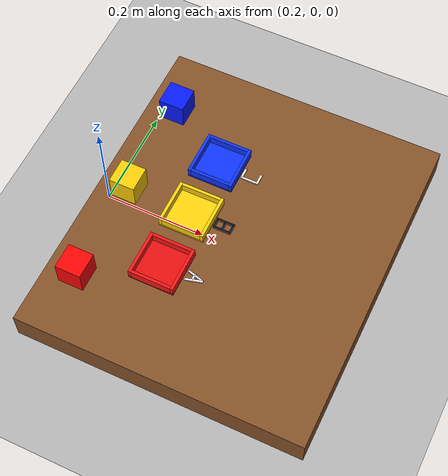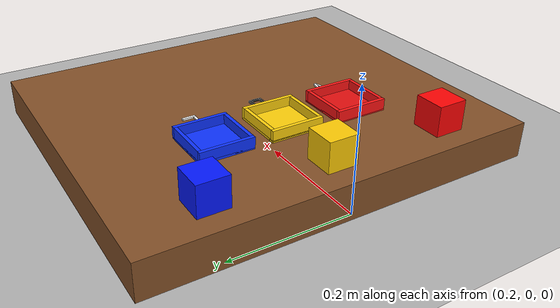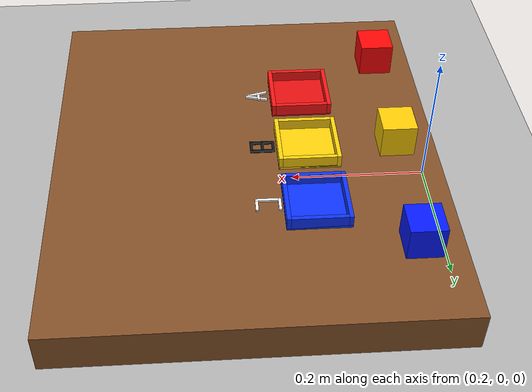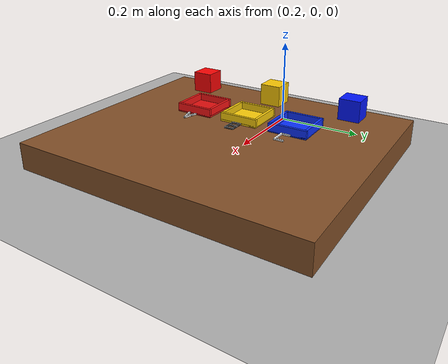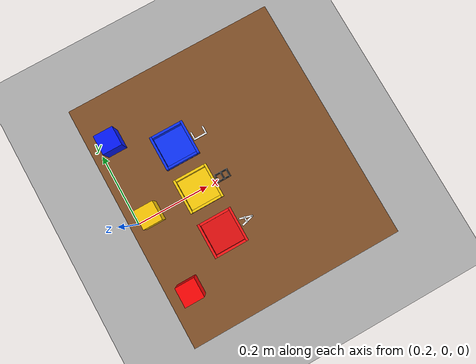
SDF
<?xml version="1.0"?>
<sdf version="1.9">
  <world name="hri_assignment">
    <physics name="1ms" type="ignored"><max_step_size>0.001</max_step_size><real_time_factor>1.0</real_time_factor></physics>
    <plugin filename="gz-sim-physics-system" name="gz::sim::systems::Physics"/>
    <plugin filename="gz-sim-user-commands-system" name="gz::sim::systems::UserCommands"/>
    <plugin filename="gz-sim-scene-broadcaster-system" name="gz::sim::systems::SceneBroadcaster"/>
    <light type="directional" name="sun"><pose>0 0 10 0 0 0</pose><diffuse>0.9 0.9 0.9 1</diffuse><direction>-0.5 0.2 -1</direction></light>
    <model name="ground_plane"><static>true</static><link name="link"><collision name="collision"><geometry><plane><normal>0 0 1</normal><size>10 10</size></plane></geometry></collision><visual name="visual"><geometry><plane><normal>0 0 1</normal><size>10 10</size></plane></geometry><material><ambient>0.7 0.7 0.7 1</ambient></material></visual></link></model>
    <model name="work_table"><static>true</static><pose>0.47 0 0.03 0 0 0</pose><link name="link"><collision name="collision"><geometry><box><size>0.56 0.65 0.06</size></box></geometry></collision><visual name="visual"><geometry><box><size>0.56 0.65 0.06</size></box></geometry><material><ambient>0.42 0.25 0.12 1</ambient><diffuse>0.52 0.32 0.16 1</diffuse></material></visual></link></model>
    <model name="red_cube"><static>true</static><pose>0.25 -0.20 0.085 0 0 0</pose><link name="link"><visual name="visual"><geometry><box><size>0.05 0.05 0.05</size></box></geometry><material><ambient>1 0.02 0.02 1</ambient><diffuse>1 0.02 0.02 1</diffuse></material></visual></link></model>
    <model name="yellow_cube"><static>true</static><pose>0.25 0 0.085 0 0 0</pose><link name="link"><visual name="visual"><geometry><box><size>0.05 0.05 0.05</size></box></geometry><material><ambient>1 0.8 0.02 1</ambient><diffuse>1 0.8 0.02 1</diffuse></material></visual></link></model>
    <model name="blue_cube"><static>true</static><pose>0.25 0.20 0.085 0 0 0</pose><link name="link"><visual name="visual"><geometry><box><size>0.05 0.05 0.05</size></box></geometry><material><ambient>0.02 0.1 1 1</ambient><diffuse>0.02 0.1 1 1</diffuse></material></visual></link></model>
    <model name="zone_a">
      <static>true</static>
      <pose>0.38 -0.12 0.062 0 0 0</pose>
      <link name="link">
        <visual name="floor"><geometry><box><size>0.09 0.09 0.004</size></box></geometry><material><ambient>0.75 0.04 0.04 1</ambient><diffuse>0.9 0.06 0.06 1</diffuse></material></visual>
        <visual name="wall_x_pos"><pose>0.042 0 0.009 0 0 0</pose><geometry><box><size>0.006 0.09 0.018</size></box></geometry><material><ambient>0.8 0.05 0.05 1</ambient><diffuse>1 0.08 0.08 1</diffuse></material></visual>
        <visual name="wall_x_neg"><pose>-0.042 0 0.009 0 0 0</pose><geometry><box><size>0.006 0.09 0.018</size></box></geometry><material><ambient>0.8 0.05 0.05 1</ambient><diffuse>1 0.08 0.08 1</diffuse></material></visual>
        <visual name="wall_y_pos"><pose>0 0.042 0.009 0 0 0</pose><geometry><box><size>0.078 0.006 0.018</size></box></geometry><material><ambient>0.8 0.05 0.05 1</ambient><diffuse>1 0.08 0.08 1</diffuse></material></visual>
        <visual name="wall_y_neg"><pose>0 -0.042 0.009 0 0 0</pose><geometry><box><size>0.078 0.006 0.018</size></box></geometry><material><ambient>0.8 0.05 0.05 1</ambient><diffuse>1 0.08 0.08 1</diffuse></material></visual>
        <!-- Label A, positioned to the +x side of the tray. -->
        <visual name="label_a_left"><pose>0.066 -0.0045 0.0025 0 0 0.27</pose><geometry><box><size>0.034 0.004 0.003</size></box></geometry><material><ambient>1 1 1 1</ambient><diffuse>1 1 1 1</diffuse><emissive>0.15 0.15 0.15 1</emissive></material></visual>
        <visual name="label_a_right"><pose>0.066 0.0045 0.0025 0 0 -0.27</pose><geometry><box><size>0.034 0.004 0.003</size></box></geometry><material><ambient>1 1 1 1</ambient><diffuse>1 1 1 1</diffuse><emissive>0.15 0.15 0.15 1</emissive></material></visual>
        <visual name="label_a_bar"><pose>0.063 0 0.0025 0 0 0</pose><geometry><box><size>0.004 0.017 0.003</size></box></geometry><material><ambient>1 1 1 1</ambient><diffuse>1 1 1 1</diffuse><emissive>0.15 0.15 0.15 1</emissive></material></visual>
      </link>
    </model>

    <model name="zone_b">
      <static>true</static>
      <pose>0.38 0 0.062 0 0 0</pose>
      <link name="link">
        <visual name="floor"><geometry><box><size>0.09 0.09 0.004</size></box></geometry><material><ambient>0.8 0.62 0.02 1</ambient><diffuse>1 0.82 0.04 1</diffuse></material></visual>
        <visual name="wall_x_pos"><pose>0.042 0 0.009 0 0 0</pose><geometry><box><size>0.006 0.09 0.018</size></box></geometry><material><ambient>0.8 0.62 0.02 1</ambient><diffuse>1 0.82 0.04 1</diffuse></material></visual>
        <visual name="wall_x_neg"><pose>-0.042 0 0.009 0 0 0</pose><geometry><box><size>0.006 0.09 0.018</size></box></geometry><material><ambient>0.8 0.62 0.02 1</ambient><diffuse>1 0.82 0.04 1</diffuse></material></visual>
        <visual name="wall_y_pos"><pose>0 0.042 0.009 0 0 0</pose><geometry><box><size>0.078 0.006 0.018</size></box></geometry><material><ambient>0.8 0.62 0.02 1</ambient><diffuse>1 0.82 0.04 1</diffuse></material></visual>
        <visual name="wall_y_neg"><pose>0 -0.042 0.009 0 0 0</pose><geometry><box><size>0.078 0.006 0.018</size></box></geometry><material><ambient>0.8 0.62 0.02 1</ambient><diffuse>1 0.82 0.04 1</diffuse></material></visual>
        <!-- Label B. -->
        <visual name="label_b_spine"><pose>0.066 -0.009 0.0025 0 0 0</pose><geometry><box><size>0.036 0.004 0.003</size></box></geometry><material><ambient>0.08 0.08 0.08 1</ambient><diffuse>0.08 0.08 0.08 1</diffuse></material></visual>
        <visual name="label_b_top"><pose>0.082 0 0.0025 0 0 0</pose><geometry><box><size>0.004 0.022 0.003</size></box></geometry><material><ambient>0.08 0.08 0.08 1</ambient><diffuse>0.08 0.08 0.08 1</diffuse></material></visual>
        <visual name="label_b_middle"><pose>0.066 0 0.0025 0 0 0</pose><geometry><box><size>0.004 0.022 0.003</size></box></geometry><material><ambient>0.08 0.08 0.08 1</ambient><diffuse>0.08 0.08 0.08 1</diffuse></material></visual>
        <visual name="label_b_bottom"><pose>0.050 0 0.0025 0 0 0</pose><geometry><box><size>0.004 0.022 0.003</size></box></geometry><material><ambient>0.08 0.08 0.08 1</ambient><diffuse>0.08 0.08 0.08 1</diffuse></material></visual>
        <visual name="label_b_right_top"><pose>0.074 0.009 0.0025 0 0 0</pose><geometry><box><size>0.016 0.004 0.003</size></box></geometry><material><ambient>0.08 0.08 0.08 1</ambient><diffuse>0.08 0.08 0.08 1</diffuse></material></visual>
        <visual name="label_b_right_bottom"><pose>0.058 0.009 0.0025 0 0 0</pose><geometry><box><size>0.016 0.004 0.003</size></box></geometry><material><ambient>0.08 0.08 0.08 1</ambient><diffuse>0.08 0.08 0.08 1</diffuse></material></visual>
      </link>
    </model>

    <model name="zone_c">
      <static>true</static>
      <pose>0.38 0.12 0.062 0 0 0</pose>
      <link name="link">
        <visual name="floor"><geometry><box><size>0.09 0.09 0.004</size></box></geometry><material><ambient>0.03 0.12 0.75 1</ambient><diffuse>0.05 0.2 1 1</diffuse></material></visual>
        <visual name="wall_x_pos"><pose>0.042 0 0.009 0 0 0</pose><geometry><box><size>0.006 0.09 0.018</size></box></geometry><material><ambient>0.03 0.12 0.75 1</ambient><diffuse>0.05 0.2 1 1</diffuse></material></visual>
        <visual name="wall_x_neg"><pose>-0.042 0 0.009 0 0 0</pose><geometry><box><size>0.006 0.09 0.018</size></box></geometry><material><ambient>0.03 0.12 0.75 1</ambient><diffuse>0.05 0.2 1 1</diffuse></material></visual>
        <visual name="wall_y_pos"><pose>0 0.042 0.009 0 0 0</pose><geometry><box><size>0.078 0.006 0.018</size></box></geometry><material><ambient>0.03 0.12 0.75 1</ambient><diffuse>0.05 0.2 1 1</diffuse></material></visual>
        <visual name="wall_y_neg"><pose>0 -0.042 0.009 0 0 0</pose><geometry><box><size>0.078 0.006 0.018</size></box></geometry><material><ambient>0.03 0.12 0.75 1</ambient><diffuse>0.05 0.2 1 1</diffuse></material></visual>
        <!-- Label C. -->
        <visual name="label_c_spine"><pose>0.066 -0.009 0.0025 0 0 0</pose><geometry><box><size>0.036 0.004 0.003</size></box></geometry><material><ambient>1 1 1 1</ambient><diffuse>1 1 1 1</diffuse><emissive>0.15 0.15 0.15 1</emissive></material></visual>
        <visual name="label_c_top"><pose>0.082 0 0.0025 0 0 0</pose><geometry><box><size>0.004 0.022 0.003</size></box></geometry><material><ambient>1 1 1 1</ambient><diffuse>1 1 1 1</diffuse><emissive>0.15 0.15 0.15 1</emissive></material></visual>
        <visual name="label_c_bottom"><pose>0.050 0 0.0025 0 0 0</pose><geometry><box><size>0.004 0.022 0.003</size></box></geometry><material><ambient>1 1 1 1</ambient><diffuse>1 1 1 1</diffuse><emissive>0.15 0.15 0.15 1</emissive></material></visual>
      </link>
    </model>
  </world>
</sdf>
